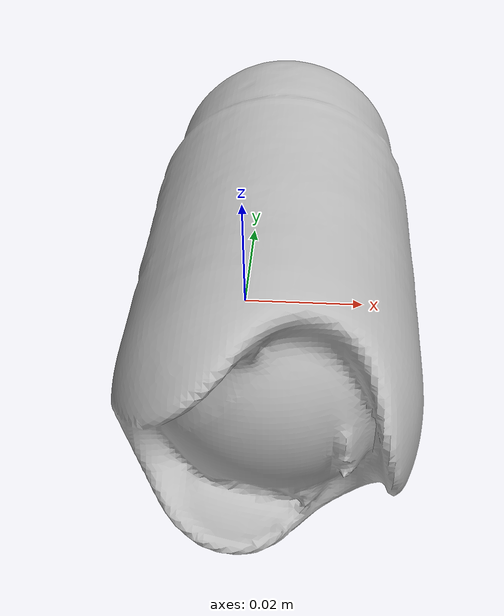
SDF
<?xml version='1.0'?>
<sdf version="1.4">
  <model name="Deodorant">
    <static>false</static>
    <link name="link">
      <inertial>
        <pose>0.005195362483961239 0.010167408418325127 0.00133188974754856 1.581131976202136 0.43556804942256255 0.008504570800161744</pose>
        <mass>0.014881786792693972</mass>
        <inertia>
          <ixx>1.1752149563072898e-05</ixx>
          <ixy>8.519664400813598e-22</ixy>
          <ixz>1.2450507791517175e-22</ixz>
          <iyy>1.1743692409256954e-05</iyy>
          <iyz>1.93230795903477e-22</iyz>
          <izz>3.755912408419176e-06</izz>
        </inertia>
      </inertial>
      <collision name="collision">
        <geometry>
          <mesh>
            <!-- Use a downsampled mesh for collisions -->
            <uri>model:///Deodorant/Deodorant_250_collision.obj</uri>
	        </mesh>
        </geometry>
        <surface>
      </surface>
      </collision>
      <visual name="visual">
        <geometry>
          <mesh>
            <uri>model:///Deodorant/Deodorant_25k_tex.obj</uri>
	        </mesh>
        </geometry>
        <material>
          <script>
            <uri>model:///Deodorant/Deodorant.material</uri>
            <name>Deodorant</name>
          </script>
        </material>
      </visual>
    </link>
  </model>
</sdf>
